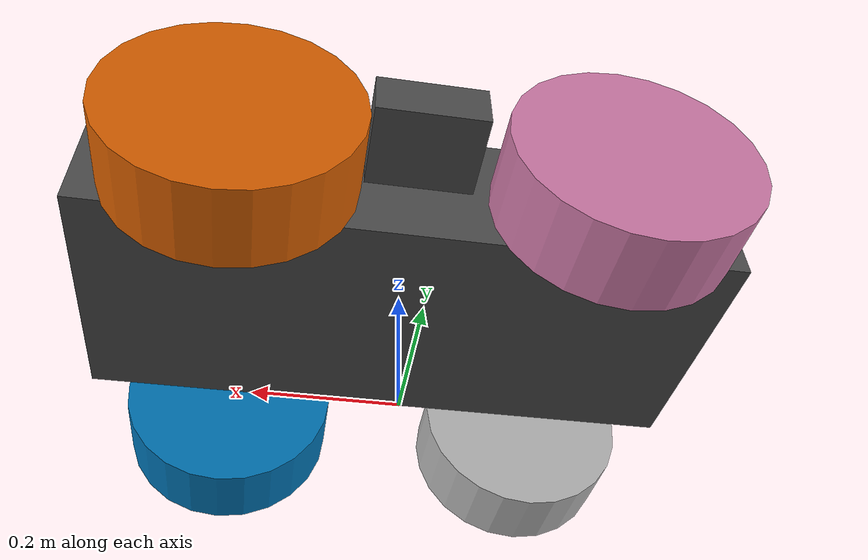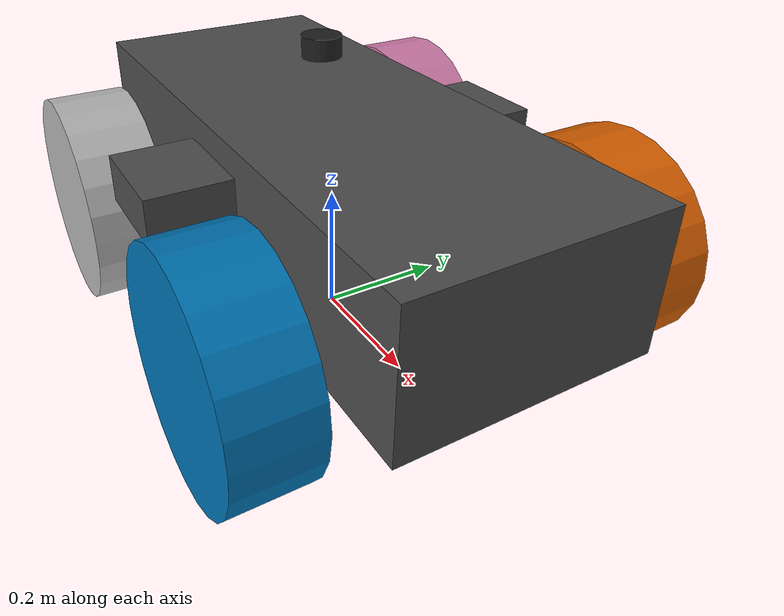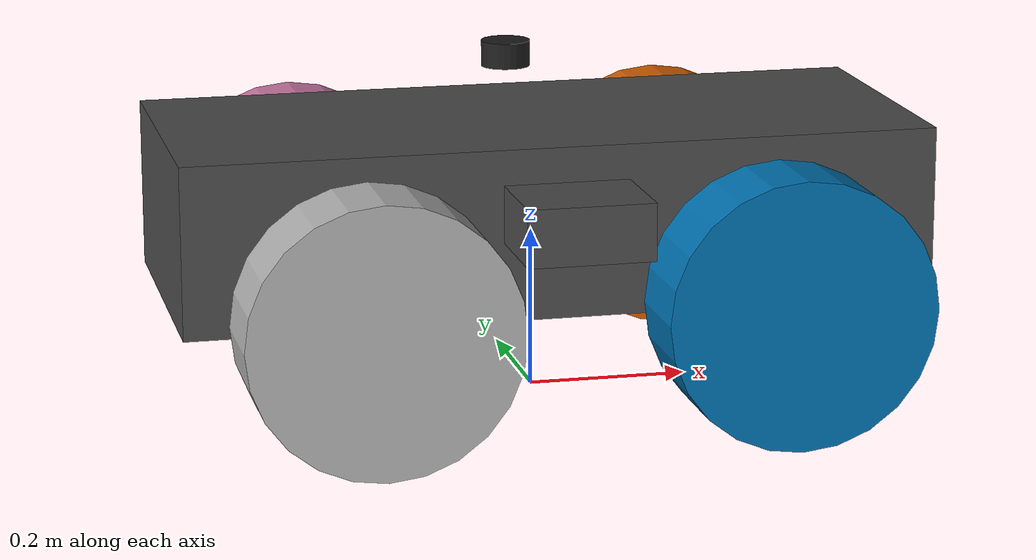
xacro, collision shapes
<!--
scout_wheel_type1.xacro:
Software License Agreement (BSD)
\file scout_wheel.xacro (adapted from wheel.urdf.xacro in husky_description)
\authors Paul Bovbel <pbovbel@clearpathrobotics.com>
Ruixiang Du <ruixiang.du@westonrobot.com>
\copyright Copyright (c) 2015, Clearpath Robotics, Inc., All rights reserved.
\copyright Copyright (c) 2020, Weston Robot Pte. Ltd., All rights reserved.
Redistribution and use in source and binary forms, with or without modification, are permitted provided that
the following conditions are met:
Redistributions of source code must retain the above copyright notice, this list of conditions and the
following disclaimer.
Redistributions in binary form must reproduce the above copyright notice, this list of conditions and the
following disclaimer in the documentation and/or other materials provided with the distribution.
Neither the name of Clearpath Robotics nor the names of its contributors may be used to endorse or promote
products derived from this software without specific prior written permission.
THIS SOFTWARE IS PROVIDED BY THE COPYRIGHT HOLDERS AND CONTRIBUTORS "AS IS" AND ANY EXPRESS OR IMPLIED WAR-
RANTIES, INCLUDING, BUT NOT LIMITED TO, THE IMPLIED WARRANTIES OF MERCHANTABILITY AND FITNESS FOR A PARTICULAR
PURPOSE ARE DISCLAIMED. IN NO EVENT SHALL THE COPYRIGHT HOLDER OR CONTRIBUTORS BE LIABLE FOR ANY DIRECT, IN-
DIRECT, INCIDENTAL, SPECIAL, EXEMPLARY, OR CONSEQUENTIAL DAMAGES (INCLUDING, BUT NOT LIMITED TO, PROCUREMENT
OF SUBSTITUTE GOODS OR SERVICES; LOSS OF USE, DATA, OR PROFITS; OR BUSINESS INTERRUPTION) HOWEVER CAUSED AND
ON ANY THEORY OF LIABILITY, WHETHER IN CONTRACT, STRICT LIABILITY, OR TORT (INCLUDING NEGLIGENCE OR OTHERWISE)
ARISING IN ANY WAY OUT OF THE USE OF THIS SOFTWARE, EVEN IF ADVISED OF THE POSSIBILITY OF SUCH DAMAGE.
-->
<?xml version="1.0"?>

<robot name="scout" xmlns:xacro="http://ros.org/wiki/xacro">
    <xacro:arg name="botname" default=""/>

    <xacro:include filename="$(find scout_description)/urdf/common_properties.xacro" />
    <xacro:include filename="$(find scout_description)/urdf/scout_v2.gazebo.xacro" />

    <xacro:include filename="$(find scout_description)/urdf/scout_wheel_type1.xacro" />
    <xacro:include filename="$(find scout_description)/urdf/scout_wheel_type2.xacro" />

    <!-- Variables -->
    <xacro:property name="M_PI" value="3.14159"/>

    <!-- Vehicle Geometries -->
    <xacro:property name="base_x_size" value="0.9250000" />
    <xacro:property name="base_y_size" value="0.380000" />
    <xacro:property name="base_z_size" value="0.210000" />

    <xacro:property name="wheelbase" value="0.498" />
    <xacro:property name="track" value="0.58306" />
    <xacro:property name="wheel_vertical_offset" value="-0.0702" />

    <xacro:property name="wheel_length" value="1.1653e-01" />
    <xacro:property name="wheel_radius" value="1.6459e-01" />

    <!-- Base link -->
    <link name="base_link">
        <visual>
            <origin xyz="0 0 0" rpy="0 0 0" />
            <geometry>
                <mesh filename="package://scout_description/meshes/base_link.dae" />
            </geometry>
        </visual>
        <collision>
            <origin xyz="0 0 0.008" rpy="0 0 0" />
            <geometry>
                <box size="${base_x_size} ${base_y_size} ${base_z_size}"/>
            </geometry>
        </collision>
        <collision>
            <origin xyz="0 0 ${base_z_size/6}" rpy="0 0 0" />
            <geometry>
                <box size="${base_x_size/6} ${base_y_size*1.65} ${base_z_size/3}"/>
            </geometry>
        </collision>
    </link>

    <link name="base_footprint"/>

    <joint name="base_link_joint" type="fixed">
        <origin xyz="0 0 ${wheel_radius - wheel_vertical_offset}" rpy="0 0 0" />
        <parent link="base_footprint" />
        <child link="base_link" />
    </joint>

    <link name="inertial_link">
        <inertial>
            <mass value="40" />
            <origin xyz="0.0 0.0 0.0" />
            <inertia ixx="2.288641" ixy="0" ixz="0" iyy="5.103976" iyz="0" izz="3.431465" />
        </inertial>
    </link>

    <joint name="inertial_joint" type="fixed">
        <origin xyz="0 0 0" rpy="0 0 0" />
        <parent link="base_link" />
        <child link="inertial_link" />
    </joint>

    <joint name="scan_joint" type="fixed">
      <parent link="base_link"/>
      <child link="base_scan"/>
      <origin xyz="-0.032 0 0.172" rpy="0 0 0"/>
    </joint>

    <link name="base_scan">
      <visual>
        <origin xyz="0 0 0.0" rpy="0 0 0"/>
        <geometry>
          <mesh filename="package://scout_description/meshes/hokuyo.dae"/>
        </geometry>
        <material name="dark"/>
      </visual>

      <collision>
        <origin xyz="0 0 0.02" rpy="0 0 0"/>
        <geometry>
          <cylinder length="0.0315" radius="0.03"/>
        </geometry>
      </collision>

      <inertial>
        <mass value="0.114" />
        <origin xyz="0 0 0" />
        <inertia ixx="0.001" ixy="0.0" ixz="0.0"
                 iyy="0.001" iyz="0.0"
                 izz="0.001" />
      </inertial>
    </link>

    <!-- Scout wheel macros -->
    <!-- wheel labeled from 0 to 3, conter-clockwise, starting from front right wheel -->
    <!-- motor 1 and 2 (left side) are mechanically installed in a reversed direction -->
    <xacro:scout_wheel_type1 wheel_prefix="front_right">
        <origin xyz="${wheelbase/2} ${-track/2} ${wheel_vertical_offset}" rpy="0 0 0" />
    </xacro:scout_wheel_type1>
    <xacro:scout_wheel_type2 wheel_prefix="front_left">
        <origin xyz="${wheelbase/2} ${track/2} ${wheel_vertical_offset}" rpy="0 0 0" />
    </xacro:scout_wheel_type2>
    <xacro:scout_wheel_type1 wheel_prefix="rear_left">
        <origin xyz="${-wheelbase/2} ${track/2} ${wheel_vertical_offset}" rpy="0 0 0" />
    </xacro:scout_wheel_type1>
    <xacro:scout_wheel_type2 wheel_prefix="rear_right">
        <origin xyz="${-wheelbase/2} ${-track/2} ${wheel_vertical_offset}" rpy="0 0 0" />
    </xacro:scout_wheel_type2>

</robot>

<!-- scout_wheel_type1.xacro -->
<robot xmlns:xacro="http://ros.org/wiki/xacro" name="scout_wheel">

    <xacro:macro name="scout_wheel_type1" params="wheel_prefix *joint_pose">
        <link name="${wheel_prefix}_wheel_link">
            <inertial>
                <mass value="3" />
                <origin xyz="0 0 0" />
                <inertia ixx="0.7171" ixy="0" ixz="0" iyy="0.1361" iyz="0" izz="0.7171" />
            </inertial>
            <visual>
                <origin xyz="0 0 0" rpy="0 0 0" />
                <geometry>
                    <mesh filename="package://scout_description/meshes/wheel_type1.dae" />
                </geometry>
            </visual>
            <collision>
                <origin xyz="0 0 0" rpy="${M_PI/2} 0 0" />
                <geometry>
                    <cylinder length="${wheel_length}" radius="${wheel_radius}" />
                </geometry>
            </collision>
        </link>

        <joint name="${wheel_prefix}_wheel" type="continuous">
            <parent link="base_link"/>
            <child link="${wheel_prefix}_wheel_link"/>
            <xacro:insert_block name="joint_pose"/>
            <axis xyz="0 1 0" rpy="0 0 0" />
        </joint>

        <transmission name="${wheel_prefix}_wheel_trans">
            <type>transmission_interface/SimpleTransmission</type>
            <joint name="${wheel_prefix}_wheel">
              <hardwareInterface>hardware_interface/VelocityJointInterface</hardwareInterface>
            </joint>
            <actuator name="${wheel_prefix}_actuator">
              <mechanicalReduction>1</mechanicalReduction>
            </actuator>
        </transmission>
    </xacro:macro>

</robot>

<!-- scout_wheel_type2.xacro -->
<robot xmlns:xacro="http://ros.org/wiki/xacro" name="scout_wheel">

    <xacro:macro name="scout_wheel_type2" params="wheel_prefix *joint_pose">
        <link name="${wheel_prefix}_wheel_link">
            <inertial>
                <mass value="3" />
                <origin xyz="0 0 0" />
                <inertia ixx="0.7171" ixy="0" ixz="0" iyy="0.1361" iyz="0" izz="0.7171" />
            </inertial>
            <visual>
                <origin xyz="0 0 0" rpy="0 0 0" />
                <geometry>
                    <mesh filename="package://scout_description/meshes/wheel_type2.dae" />
                </geometry>
            </visual>
            <collision>
                <origin xyz="0 0 0" rpy="${M_PI/2} 0 0" />
                <geometry>
                    <cylinder length="${wheel_length}" radius="${wheel_radius}" />
                </geometry>
            </collision>
        </link>

        <joint name="${wheel_prefix}_wheel" type="continuous">
            <parent link="base_link"/>
            <child link="${wheel_prefix}_wheel_link"/>
            <xacro:insert_block name="joint_pose"/>
            <axis xyz="0 1 0" rpy="0 0 0" />
        </joint>

        <transmission name="${wheel_prefix}_wheel_trans">
            <type>transmission_interface/SimpleTransmission</type>
            <joint name="${wheel_prefix}_wheel">
              <hardwareInterface>hardware_interface/VelocityJointInterface</hardwareInterface>
            </joint>
            <actuator name="${wheel_prefix}_actuator">
              <mechanicalReduction>1</mechanicalReduction>
            </actuator>
        </transmission>
    </xacro:macro>

</robot>
